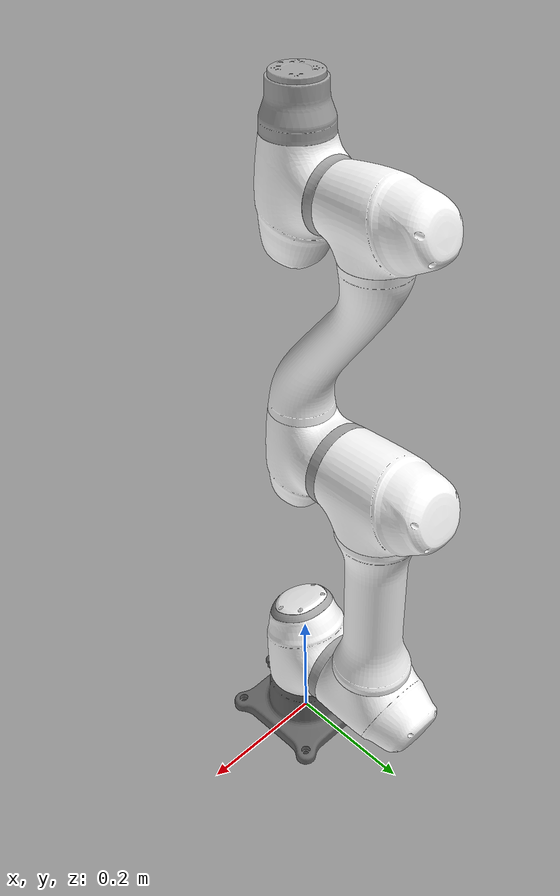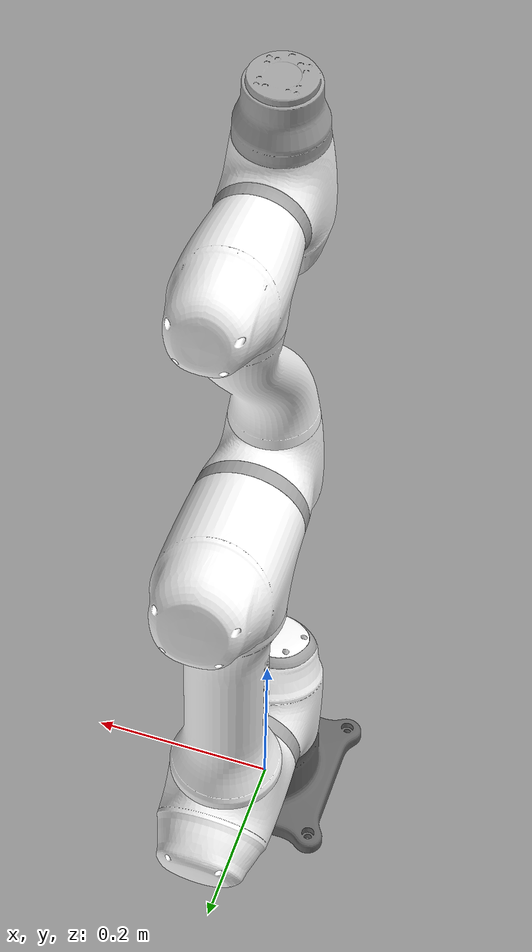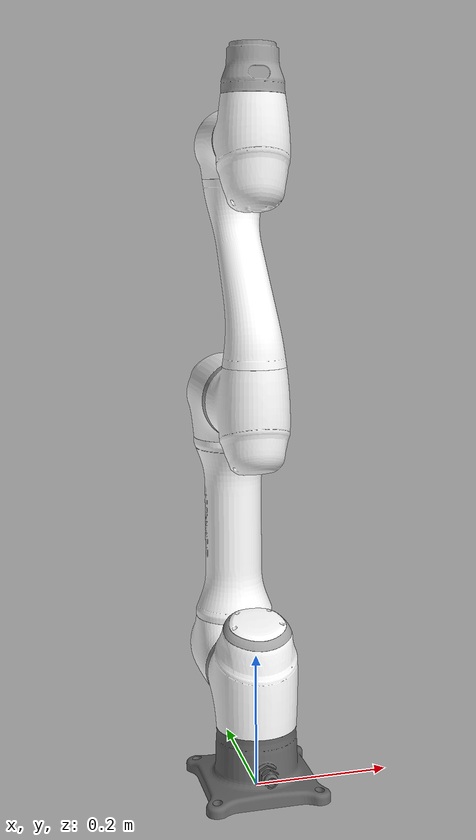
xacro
<?xml version="1.0"?>
<robot xmlns:xacro="http://www.ros.org/wiki/xacro" name="a0509" >

  <xacro:arg name="color"   default="white"/>
  <xacro:arg name="gripper" default="none"/>
  <xacro:arg name="namespace" default=""/>

  <xacro:property name="cr" value="$(arg color)"/>
  <xacro:property name="gr" value="$(arg gripper)"/>

  <xacro:if value="${cr == 'white'}">
     <xacro:include filename="$(find dsr_description2)/xacro/macro.a0509.white.xacro" />
  </xacro:if>
  <xacro:if value="${cr == 'blue'}">
     <xacro:include filename="$(find dsr_description2)/xacro/macro.a0509.blue.xacro" />
  </xacro:if>
  <xacro:a0509 namespace="$(arg namespace)"/>

  <link name="world" />
  <xacro:if value="${gr == 'robotiq_2f'}">
     <xacro:include filename="$(find dsr_description2)/xacro/robotiq_2f.urdf.xacro" />
  </xacro:if>

  <!-- World fixed joint-->
  <joint name="world_fixed" type="fixed">
    <origin xyz="0 0 0" rpy="0 0 0"/>
    <parent link="world"/>
    <child link="base_0"/>
  </joint>

</robot>

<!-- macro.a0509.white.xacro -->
<robot name="a0509" xmlns:xacro="http://www.ros.org/wiki/xacro">
	<xacro:include filename="$(find dsr_description2)/config/macro.gazebo.xacro" />
	<xacro:include filename="$(find dsr_description2)/config/macro.transmission.xacro" />
	<!--xacro:include filename="$(find dsr_description2)/config/macro.materials.xacro" /-->
	<xacro:macro name="a0509" params="namespace">
		<!--xacro:dsr_materials /-->
		<link name="base_0">
			<inertial>
				<mass value="2.198"/>
				<origin xyz="-1e-06   -0.001096    0.058957"/>
				<inertia ixx="0.010511" ixy="4.9786e-06" ixz="7.1839e-06" iyy="0.012033"
					iyz="-2.3529e-05"
					izz="0.012481"/>
			</inertial>
			<visual>
				<origin rpy="0 0 0" xyz="0 0 0" />
				<geometry>
					<mesh filename="file:///$(find dsr_description2)/meshes/a0509_white/A0509_0_0.dae" scale="0.001 0.001 0.001" />
				</geometry>
			</visual>
		</link>
		<!-- joint 1 -->
		<joint name="joint1" type="revolute">
			<parent link="base_0" />
			<child link="link1" />
			<origin rpy="0 0 0" xyz="0 0 0.1555" />
			<axis xyz="0 0 1" />
			<limit effort="194" lower="-6.2832" upper="6.2832" velocity="3.1416"/>
			<dynamics friction="0" />
		</joint>
		<link name="link1">
			<inertial>
				<mass value="3.715"/>
				<origin xyz="-6.9e-05    0.024423   -0.007375"/>
				<inertia ixx="0.01899" ixy="7.8574e-07" ixz="1.865e-05" iyy="0.013731" iyz="-0.00072828"
					izz="0.01686"/>
			</inertial>
            <collision>
                <geometry>
                    <cylinder radius="0.08" length="0.2"/>
                </geometry>
            </collision>
			<visual>
				<origin rpy="0 0 0" xyz="0 0 0" />
				<geometry>
					<mesh filename="file:///$(find dsr_description2)/meshes/a0509_white/A0509_1_0.dae" scale="0.001 0.001 0.001" />
				</geometry>
			</visual>
            <visual>
				<origin rpy="0 0 0" xyz="0 0 0" />
				<geometry>
					<mesh filename="file:///$(find dsr_description2)/meshes/a0509_white/A0509_1_1.dae" scale="0.001 0.001 0.001" />
				</geometry>
			</visual>
            <visual>
				<origin rpy="0 0 0" xyz="0 0 0" />
				<geometry>
					<mesh filename="file:///$(find dsr_description2)/meshes/a0509_white/A0509_1_2.dae" scale="0.001 0.001 0.001" />
				</geometry>
			</visual>
		</link>
		<!-- joint2 -->
		<joint name="joint2" type="revolute">
			<parent link="link1" />
			<child link="link2" />
			<origin rpy="0 -1.571 -1.571" xyz="0 0 0" />
			<axis xyz="0 0 1" />
			<limit effort="194" lower="-6.2832" upper="6.2832" velocity="3.1416"/>
			<dynamics friction="0" />
		</joint>
		<link name="link2">
			<inertial>
				<mass value="6.837"/>
				<origin xyz="0.20449 -1.2521e-17     0.13271"/>
				<inertia ixx="0.019399" ixy="0.00010317" ixz="4.2985e-06" iyy="0.25627" iyz="5.1674e-06"
					izz="0.25442"/>
			</inertial>
            <collision>
                <origin rpy="0 -1.571 0" xyz="0.2 0 0.1525" />
                <geometry>
                    <cylinder radius="0.08" length="0.5"/>
                </geometry>
            </collision>
			<visual>
				<origin rpy="0 0 0" xyz="0 0 0" />
				<geometry>
					<mesh filename="file:///$(find dsr_description2)/meshes/a0509_white/A0509_2_0.dae" scale="0.001 0.001 0.001" />
				</geometry>
			</visual>
			<visual>
				<origin rpy="0 0 0" xyz="0 0 0" />
				<geometry>
					<mesh filename="file:///$(find dsr_description2)/meshes/a0509_white/A0509_2_1.dae" scale="0.001 0.001 0.001" />
				</geometry>
			</visual>
			<visual>
				<origin rpy="0 0 0" xyz="0 0 0" />
				<geometry>
					<mesh filename="file:///$(find dsr_description2)/meshes/a0509_white/A0509_2_2.dae" scale="0.001 0.001 0.001" />
				</geometry>
			</visual>
		</link>
		<!-- joint3 -->
		<joint name="joint3" type="revolute">
			<parent link="link2" />
			<child link="link3" />
			<origin rpy="0 0 1.571" xyz="0.409 0 0" />
			<axis xyz="0 0 1" />
			<limit effort="163" lower="-2.7925" upper="2.7925" velocity="3.1416"/>
			<dynamics friction="0" />
		</joint>
		<link name="link3">
			<inertial>
				<mass value="2.769"/>
				<origin xyz="7.1e-05   -0.005123    0.033009"/>
				<inertia ixx="0.012526" ixy="-7.1869e-06" ixz="1.3345e-05" iyy="0.013868"
					iyz="-0.00047287"
					izz="0.0088186"/>
			</inertial>
			<visual>
				<origin rpy="0 0 0" xyz="0 0 0" />
				<geometry>
					<mesh filename="file:///$(find dsr_description2)/meshes/a0509_white/A0509_3_0.dae" scale="0.001 0.001 0.001" />
				</geometry>
			</visual>
            <visual>
				<origin rpy="0 0 0" xyz="0 0 0" />
				<geometry>
					<mesh filename="file:///$(find dsr_description2)/meshes/a0509_white/A0509_3_1.dae" scale="0.001 0.001 0.001" />
				</geometry>
			</visual>
		</link>
		<!-- joint4 -->
		<joint name="joint4" type="revolute">
			<parent link="link3" />
			<child link="link4" />
			<origin rpy="1.571 0 0" xyz="0 -0.367 0" />
			<axis xyz="0 0 1" />
			<limit effort="50" lower="-6.2832" upper="6.2832" velocity="6.2832"/>
			<dynamics friction="0" />
		</joint>
		<link name="link4">
			<inertial>
				<mass value="2.679"/>
				<origin xyz="-8.6e-05    0.086348   -0.086031"/>
				<inertia ixx="0.056068" ixy="2.2109e-05" ixz="1.4522e-05" iyy="0.047122" iyz="-0.014997"
					izz="0.013329"/>
			</inertial>
            <collision>
                <origin rpy="-0.55 0 0" xyz="0 0.05 -0.2" />
                <geometry>
                    <cylinder radius="0.05" length="0.4"/>
                </geometry>
            </collision>
			<visual>
				<origin rpy="0 0 0" xyz="0 0 0" />
				<geometry>
					<mesh filename="file:///$(find dsr_description2)/meshes/a0509_white/A0509_4_0.dae" scale="0.001 0.001 0.001" />
				</geometry>
			</visual>
			<visual>
				<origin rpy="0 0 0" xyz="0 0 0" />
				<geometry>
					<mesh filename="file:///$(find dsr_description2)/meshes/a0509_white/A0509_4_1.dae" scale="0.001 0.001 0.001" />
				</geometry>
			</visual>
		</link>
		<!-- joint5 -->
		<joint name="joint5" type="revolute">
			<parent link="link4" />
			<child link="link5" />
			<origin rpy="-1.571 0 0" xyz="0 0 0" />
			<axis xyz="0 0 1" />
			<limit effort="50" lower="-6.2832" upper="6.2832" velocity="6.2832"/>
			<dynamics friction="0" />
		</joint>
		<link name="link5">
			<inertial>
				<mass value="2.051"/>
				<origin xyz="9.1e-05   -0.006457    0.015434"/>
				<inertia ixx="0.0090788" ixy="-5.3997e-06" ixz="8.3955e-06" iyy="0.0084721"
					iyz="-0.0001816"
					izz="0.010453"/>
			</inertial>
            <collision>
                <origin rpy="1.571 0 0" xyz="0 0 0" />
                <geometry>
                    <cylinder radius="0.06" length="0.15"/>
                </geometry>
            </collision>
			<visual>
				<origin rpy="0 0 0" xyz="0 0 0" />
				<geometry>
					<mesh filename="file:///$(find dsr_description2)/meshes/a0509_white/A0509_5_0.dae" scale="0.001 0.001 0.001" />
				</geometry>
			</visual>
            <visual>
				<origin rpy="0 0 0" xyz="0 0 0" />
				<geometry>
					<mesh filename="file:///$(find dsr_description2)/meshes/a0509_white/A0509_5_1.dae" scale="0.001 0.001 0.001" />
				</geometry>
			</visual>
		</link>
		<!-- joint6 -->
		<joint name="joint6" type="revolute">
			<parent link="link5" />
			<child link="link6" />
			<origin rpy="1.571 0 0" xyz="0 -0.124 0" />
			<axis xyz="0 0 1" />
			<limit effort="50" lower="-6.2832" upper="6.2832" velocity="6.2832"/>
			<dynamics friction="0" />
		</joint>
		<link name="link6">
			<inertial>
				<mass value="0.773"/>
				<origin xyz="-2.2e-05      -7e-06   -0.051746"/>
				<inertia ixx="0.0087483" ixy="7.9428e-06" ixz="1.7034e-06" iyy="0.0078566"
					iyz="9.6857e-06"
					izz="0.0044452"/>
			</inertial>
			<visual>
				<origin rpy="0 0 0" xyz="0 0 0" />
				<geometry>
					<mesh filename="file:///$(find dsr_description2)/meshes/a0509_white/A0509_6_0.dae" scale="0.001 0.001 0.001" />
				</geometry>
			</visual>
		</link>
		<xacro:dsr_transmission />
		<xacro:dsr_gazebo namespace="${namespace}" />
	</xacro:macro>
</robot>
